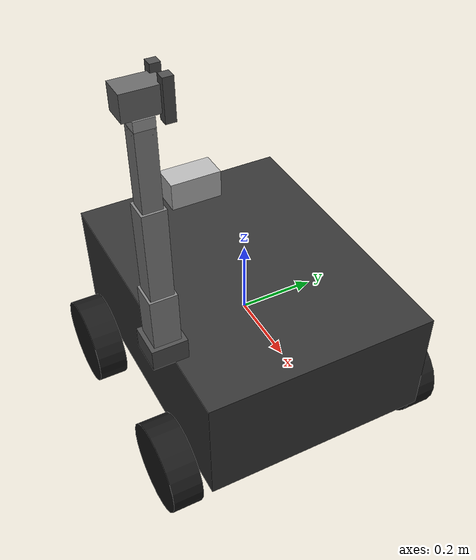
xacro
<?xml version="1.0"?>
<robot xmlns:xacro="http://www.ros.org/wiki/xacro" name="anveshak_rover">

  <!-- PARAMETERS AND CONSTANTS -->

  <!-- Robot dimensions -->
  <xacro:property name="base_length" value="0.8"/>
  <xacro:property name="base_width" value="0.6"/>
  <xacro:property name="base_height" value="0.3"/>
  <xacro:property name="base_mass" value="15.0"/>

  <!-- Wheel properties -->
  <xacro:property name="wheel_radius" value="0.12"/>
  <xacro:property name="wheel_thickness" value="0.08"/>
  <xacro:property name="wheel_mass" value="1.5"/>

  <!-- Wheel positions -->
  <xacro:property name="wheel_x_offset" value="0.25"/>  <!-- Distance from center along X -->
  <xacro:property name="wheel_y_offset" value="0.35"/>  <!-- Distance from center along Y (width/2 - margin) -->
  <xacro:property name="wheel_z_offset" value="-0.18"/> <!-- Height offset -->

  <!-- Bar differential properties -->
  <xacro:property name="diff_bar_length" value="0.7"/>
  <xacro:property name="diff_bar_radius" value="0.02"/>
  <xacro:property name="diff_bar_mass" value="0.5"/>

  <!-- Arm properties -->
  <xacro:property name="arm_base_height" value="0.15"/>
  <xacro:property name="shoulder_offset_x" value="0.3"/>
  <xacro:property name="shoulder_offset_y" value="-0.35"/>

  <!-- Link inertia macro -->
  <xacro:macro name="inertia_box" params="mass length width height">
    <inertial>
      <mass value="${mass}"/>
      <inertia ixx="${mass * (width*width + height*height) / 12.0}"
               iyy="${mass * (length*length + height*height) / 12.0}"
               izz="${mass * (length*length + width*width) / 12.0}"
               ixy="0.0" ixz="0.0" iyz="0.0"/>
    </inertial>
  </xacro:macro>

  <xacro:macro name="inertia_cylinder" params="mass radius length">
    <inertial>
      <mass value="${mass}"/>
      <inertia ixx="${mass * (3*radius*radius + length*length) / 12.0}"
               iyy="${mass * (3*radius*radius + length*length) / 12.0}"
               izz="${mass * radius*radius / 2.0}"
               ixy="0.0" ixz="0.0" iyz="0.0"/>
    </inertial>
  </xacro:macro>

  <!-- BASE LINK (Main Chassis) -->

  <link name="base_link">
    <visual>
      <origin xyz="0 0 0" rpy="0 0 0"/>
      <geometry>
        <box size="${base_length} ${base_width} ${base_height}"/>
      </geometry>
      <material name="chassis_color">
        <color rgba="0.2 0.2 0.2 1.0"/>
      </material>
    </visual>

    <collision>
      <origin xyz="0 0 0" rpy="0 0 0"/>
      <geometry>
        <box size="${base_length} ${base_width} ${base_height}"/>
      </geometry>
    </collision>

    <xacro:inertia_box mass="${base_mass}" length="${base_length}" width="${base_width}" height="${base_height}"/>
  </link>

  <!-- WHEELS (4x with individual control) -->

  <!-- Front Left Wheel -->
  <joint name="front_left_wheel_joint" type="continuous">
    <parent link="base_link"/>
    <child link="front_left_wheel"/>
    <origin xyz="${wheel_x_offset} ${wheel_y_offset} ${wheel_z_offset}" rpy="0 0 0"/>
    <axis xyz="0 1 0"/>
    <limit effort="100" velocity="20"/>
    <dynamics damping="0.1" friction="0.1"/>
  </joint>

  <link name="front_left_wheel">
    <visual>
      <origin xyz="0 0 0" rpy="1.5708 0 0"/>
      <geometry>
        <cylinder radius="${wheel_radius}" length="${wheel_thickness}"/>
      </geometry>
      <material name="wheel_color">
        <color rgba="0.1 0.1 0.1 1.0"/>
      </material>
    </visual>

    <collision>
      <origin xyz="0 0 0" rpy="1.5708 0 0"/>
      <geometry>
        <cylinder radius="${wheel_radius}" length="${wheel_thickness}"/>
      </geometry>
    </collision>

    <xacro:inertia_cylinder mass="${wheel_mass}" radius="${wheel_radius}" length="${wheel_thickness}"/>
  </link>

  <!-- Front Right Wheel -->
  <joint name="front_right_wheel_joint" type="continuous">
    <parent link="base_link"/>
    <child link="front_right_wheel"/>
    <origin xyz="${wheel_x_offset} ${-wheel_y_offset} ${wheel_z_offset}" rpy="0 0 0"/>
    <axis xyz="0 1 0"/>
    <limit effort="100" velocity="20"/>
    <dynamics damping="0.1" friction="0.1"/>
  </joint>

  <link name="front_right_wheel">
    <visual>
      <origin xyz="0 0 0" rpy="1.5708 0 0"/>
      <geometry>
        <cylinder radius="${wheel_radius}" length="${wheel_thickness}"/>
      </geometry>
      <material name="wheel_color">
        <color rgba="0.1 0.1 0.1 1.0"/>
      </material>
    </visual>

    <collision>
      <origin xyz="0 0 0" rpy="1.5708 0 0"/>
      <geometry>
        <cylinder radius="${wheel_radius}" length="${wheel_thickness}"/>
      </geometry>
    </collision>

    <xacro:inertia_cylinder mass="${wheel_mass}" radius="${wheel_radius}" length="${wheel_thickness}"/>
  </link>

  <!-- Rear Left Wheel -->
  <joint name="rear_left_wheel_joint" type="continuous">
    <parent link="base_link"/>
    <child link="rear_left_wheel"/>
    <origin xyz="${-wheel_x_offset} ${wheel_y_offset} ${wheel_z_offset}" rpy="0 0 0"/>
    <axis xyz="0 1 0"/>
    <limit effort="100" velocity="20"/>
    <dynamics damping="0.1" friction="0.1"/>
  </joint>

  <link name="rear_left_wheel">
    <visual>
      <origin xyz="0 0 0" rpy="1.5708 0 0"/>
      <geometry>
        <cylinder radius="${wheel_radius}" length="${wheel_thickness}"/>
      </geometry>
      <material name="wheel_color">
        <color rgba="0.1 0.1 0.1 1.0"/>
      </material>
    </visual>

    <collision>
      <origin xyz="0 0 0" rpy="1.5708 0 0"/>
      <geometry>
        <cylinder radius="${wheel_radius}" length="${wheel_thickness}"/>
      </geometry>
    </collision>

    <xacro:inertia_cylinder mass="${wheel_mass}" radius="${wheel_radius}" length="${wheel_thickness}"/>
  </link>

  <!-- Rear Right Wheel -->
  <joint name="rear_right_wheel_joint" type="continuous">
    <parent link="base_link"/>
    <child link="rear_right_wheel"/>
    <origin xyz="${-wheel_x_offset} ${-wheel_y_offset} ${wheel_z_offset}" rpy="0 0 0"/>
    <axis xyz="0 1 0"/>
    <limit effort="100" velocity="20"/>
    <dynamics damping="0.1" friction="0.1"/>
  </joint>

  <link name="rear_right_wheel">
    <visual>
      <origin xyz="0 0 0" rpy="1.5708 0 0"/>
      <geometry>
        <cylinder radius="${wheel_radius}" length="${wheel_thickness}"/>
      </geometry>
      <material name="wheel_color">
        <color rgba="0.1 0.1 0.1 1.0"/>
      </material>
    </visual>

    <collision>
      <origin xyz="0 0 0" rpy="1.5708 0 0"/>
      <geometry>
        <cylinder radius="${wheel_radius}" length="${wheel_thickness}"/>
      </geometry>
    </collision>

    <xacro:inertia_cylinder mass="${wheel_mass}" radius="${wheel_radius}" length="${wheel_thickness}"/>
  </link>

  <!-- BAR DIFFERENTIAL (Connects front and rear axles for suspension) -->

  <joint name="diff_bar_joint" type="revolute">
    <parent link="base_link"/>
    <child link="diff_bar"/>
    <origin xyz="0 0 0" rpy="0 1.5708 0"/>
    <axis xyz="1 0 0"/>
    <limit lower="-0.3" upper="0.3" effort="50" velocity="5"/>
    <dynamics damping="0.2" friction="0.05"/>
  </joint>

  <link name="diff_bar">
    <visual>
      <origin xyz="0 0 0" rpy="0 0 0"/>
      <geometry>
        <cylinder radius="${diff_bar_radius}" length="${diff_bar_length}"/>
      </geometry>
      <material name="diff_color">
        <color rgba="0.4 0.4 0.4 1.0"/>
      </material>
    </visual>

    <collision>
      <origin xyz="0 0 0" rpy="0 0 0"/>
      <geometry>
        <cylinder radius="${diff_bar_radius}" length="${diff_bar_length}"/>
      </geometry>
    </collision>

    <xacro:inertia_cylinder mass="${diff_bar_mass}" radius="${diff_bar_radius}" length="${diff_bar_length}"/>
  </link>

  <!-- MANIPULATOR ARM (5-DOF with gripper) -->

  <!-- Arm Base (Fixed platform on rover) -->
  <joint name="arm_base_joint" type="fixed">
    <parent link="base_link"/>
    <child link="arm_base_link"/>
    <origin xyz="${shoulder_offset_x} ${shoulder_offset_y} ${base_height/2 + arm_base_height}" rpy="0 0 0"/>
  </joint>

  <link name="arm_base_link">
    <visual>
      <origin xyz="0 0 0" rpy="0 0 0"/>
      <geometry>
        <box size="0.08 0.08 0.05"/>
      </geometry>
      <material name="arm_base_color">
        <color rgba="0.3 0.3 0.3 1.0"/>
      </material>
    </visual>

    <collision>
      <origin xyz="0 0 0" rpy="0 0 0"/>
      <geometry>
        <box size="0.08 0.08 0.05"/>
      </geometry>
    </collision>

    <inertial>
      <mass value="0.5"/>
      <inertia ixx="0.001" iyy="0.001" izz="0.001" ixy="0.0" ixz="0.0" iyz="0.0"/>
    </inertial>
  </link>

  <!-- Joint 1: Base Rotation (Yaw around Z) -->
  <joint name="arm_base_rotation_joint" type="revolute">
    <parent link="arm_base_link"/>
    <child link="shoulder_link"/>
    <origin xyz="0 0 0.025" rpy="0 0 0"/>
    <axis xyz="0 0 1"/>
    <limit lower="-3.14159" upper="3.14159" effort="50" velocity="3"/>
    <dynamics damping="0.1" friction="0.05"/>
  </joint>

  <link name="shoulder_link">
    <visual>
      <origin xyz="0 0 0.06" rpy="0 0 0"/>
      <geometry>
        <box size="0.06 0.06 0.12"/>
      </geometry>
      <material name="arm_color">
        <color rgba="0.5 0.5 0.5 1.0"/>
      </material>
    </visual>

    <collision>
      <origin xyz="0 0 0.06" rpy="0 0 0"/>
      <geometry>
        <box size="0.06 0.06 0.12"/>
      </geometry>
    </collision>

    <inertial>
      <mass value="1.0"/>
      <inertia ixx="0.01" iyy="0.01" izz="0.005" ixy="0.0" ixz="0.0" iyz="0.0"/>
    </inertial>
  </link>

  <!-- Joint 2: Shoulder (Pitch - up/down) -->
  <joint name="shoulder_pitch_joint" type="revolute">
    <parent link="shoulder_link"/>
    <child link="upper_arm_link"/>
    <origin xyz="0 0 0.12" rpy="0 0 0"/>
    <axis xyz="0 1 0"/>
    <limit lower="-1.5708" upper="1.5708" effort="40" velocity="2"/>
    <dynamics damping="0.1" friction="0.05"/>
  </joint>

  <link name="upper_arm_link">
    <visual>
      <origin xyz="0 0 0.1" rpy="0 0 0"/>
      <geometry>
        <box size="0.05 0.05 0.20"/>
      </geometry>
      <material name="arm_color">
        <color rgba="0.5 0.5 0.5 1.0"/>
      </material>
    </visual>

    <collision>
      <origin xyz="0 0 0.1" rpy="0 0 0"/>
      <geometry>
        <box size="0.05 0.05 0.20"/>
      </geometry>
    </collision>

    <inertial>
      <mass value="0.8"/>
      <inertia ixx="0.003" iyy="0.003" izz="0.001" ixy="0.0" ixz="0.0" iyz="0.0"/>
    </inertial>
  </link>

  <!-- Joint 3: Elbow (Pitch) -->
  <joint name="elbow_pitch_joint" type="revolute">
    <parent link="upper_arm_link"/>
    <child link="forearm_link"/>
    <origin xyz="0 0 0.20" rpy="0 0 0"/>
    <axis xyz="0 1 0"/>
    <limit lower="-1.5708" upper="1.5708" effort="35" velocity="2.5"/>
    <dynamics damping="0.1" friction="0.05"/>
  </joint>

  <link name="forearm_link">
    <visual>
      <origin xyz="0 0 0.08" rpy="0 0 0"/>
      <geometry>
        <box size="0.04 0.04 0.16"/>
      </geometry>
      <material name="arm_color">
        <color rgba="0.5 0.5 0.5 1.0"/>
      </material>
    </visual>

    <collision>
      <origin xyz="0 0 0.08" rpy="0 0 0"/>
      <geometry>
        <box size="0.04 0.04 0.16"/>
      </geometry>
    </collision>

    <inertial>
      <mass value="0.6"/>
      <inertia ixx="0.002" iyy="0.002" izz="0.0005" ixy="0.0" ixz="0.0" iyz="0.0"/>
    </inertial>
  </link>

  <!-- Joint 4: Wrist (Roll) -->
  <joint name="wrist_roll_joint" type="revolute">
    <parent link="forearm_link"/>
    <child link="wrist_link"/>
    <origin xyz="0 0 0.16" rpy="0 0 0"/>
    <axis xyz="1 0 0"/>
    <limit lower="-3.14159" upper="3.14159" effort="20" velocity="3"/>
    <dynamics damping="0.05" friction="0.02"/>
  </joint>

  <link name="wrist_link">
    <visual>
      <origin xyz="0 0 0" rpy="0 0 0"/>
      <geometry>
        <box size="0.04 0.04 0.04"/>
      </geometry>
      <material name="wrist_color">
        <color rgba="0.6 0.6 0.6 1.0"/>
      </material>
    </visual>

    <collision>
      <origin xyz="0 0 0" rpy="0 0 0"/>
      <geometry>
        <box size="0.04 0.04 0.04"/>
      </geometry>
    </collision>

    <inertial>
      <mass value="0.3"/>
      <inertia ixx="0.0003" iyy="0.0003" izz="0.0003" ixy="0.0" ixz="0.0" iyz="0.0"/>
    </inertial>
  </link>

  <!-- GRIPPER (Parallel jaw gripper with mimic joints) -->

  <!-- Gripper Base -->
  <joint name="gripper_base_joint" type="fixed">
    <parent link="wrist_link"/>
    <child link="gripper_base_link"/>
    <origin xyz="0 0 0.05" rpy="0 0 0"/>
  </joint>

  <link name="gripper_base_link">
    <visual>
      <origin xyz="0 0 0" rpy="0 0 0"/>
      <geometry>
        <box size="0.05 0.08 0.05"/>
      </geometry>
      <material name="gripper_color">
        <color rgba="0.4 0.4 0.4 1.0"/>
      </material>
    </visual>

    <collision>
      <origin xyz="0 0 0" rpy="0 0 0"/>
      <geometry>
        <box size="0.05 0.08 0.05"/>
      </geometry>
    </collision>

    <inertial>
      <mass value="0.2"/>
      <inertia ixx="0.0002" iyy="0.0002" izz="0.0002" ixy="0.0" ixz="0.0" iyz="0.0"/>
    </inertial>
  </link>

  <!-- Gripper Main Control Joint -->
  <joint name="gripper_controller_joint" type="prismatic">
    <parent link="gripper_base_link"/>
    <child link="gripper_right_finger"/>
    <origin xyz="0.025 0.04 0" rpy="0 0 0"/>
    <axis xyz="0 1 0"/>
    <limit lower="0" upper="0.03" effort="30" velocity="0.5"/>
    <dynamics damping="0.1" friction="0.05"/>
  </joint>

  <link name="gripper_right_finger">
    <visual>
      <origin xyz="0 0 0" rpy="0 0 0"/>
      <geometry>
        <box size="0.02 0.02 0.08"/>
      </geometry>
      <material name="gripper_finger">
        <color rgba="0.3 0.3 0.3 1.0"/>
      </material>
    </visual>

    <collision>
      <origin xyz="0 0 0" rpy="0 0 0"/>
      <geometry>
        <box size="0.02 0.02 0.08"/>
      </geometry>
    </collision>

    <inertial>
      <mass value="0.1"/>
      <inertia ixx="0.0001" iyy="0.0001" izz="0.00005" ixy="0.0" ixz="0.0" iyz="0.0"/>
    </inertial>
  </link>

  <!-- Left Finger (Mimic joint - mirrors right finger) -->
  <joint name="gripper_left_finger_joint" type="prismatic">
    <parent link="gripper_base_link"/>
    <child link="gripper_left_finger"/>
    <origin xyz="-0.025 0.04 0" rpy="0 0 0"/>
    <axis xyz="0 1 0"/>
    <limit lower="0" upper="0.03" effort="30" velocity="0.5"/>
    <dynamics damping="0.1" friction="0.05"/>
    <mimic joint="gripper_controller_joint" multiplier="-1.0" offset="0.03"/>
  </joint>

  <link name="gripper_left_finger">
    <visual>
      <origin xyz="0 0 0" rpy="0 0 0"/>
      <geometry>
        <box size="0.02 0.02 0.08"/>
      </geometry>
      <material name="gripper_finger">
        <color rgba="0.3 0.3 0.3 1.0"/>
      </material>
    </visual>

    <collision>
      <origin xyz="0 0 0" rpy="0 0 0"/>
      <geometry>
        <box size="0.02 0.02 0.08"/>
      </geometry>
    </collision>

    <inertial>
      <mass value="0.1"/>
      <inertia ixx="0.0001" iyy="0.0001" izz="0.00005" ixy="0.0" ixz="0.0" iyz="0.0"/>
    </inertial>
  </link>

  <!-- STEREO CAMERA (At rear of rover) -->

  <!-- Camera Mount -->
  <joint name="camera_mount_joint" type="fixed">
    <parent link="base_link"/>
    <child link="camera_mount_link"/>
    <origin xyz="${-base_length/2 + 0.08} 0 ${base_height/2 + 0.05}" rpy="0 0 0"/>
  </joint>

  <link name="camera_mount_link">
    <visual>
      <origin xyz="0 0 0" rpy="0 0 0"/>
      <geometry>
        <box size="0.08 0.15 0.08"/>
      </geometry>
      <material name="camera_mount_color">
        <color rgba="0.7 0.7 0.7 1.0"/>
      </material>
    </visual>

    <collision>
      <origin xyz="0 0 0" rpy="0 0 0"/>
      <geometry>
        <box size="0.08 0.15 0.08"/>
      </geometry>
    </collision>

    <inertial>
      <mass value="0.3"/>
      <inertia ixx="0.0003" iyy="0.0003" izz="0.0003" ixy="0.0" ixz="0.0" iyz="0.0"/>
    </inertial>
  </link>

  <!-- Left Camera -->
  <joint name="left_camera_joint" type="fixed">
    <parent link="camera_mount_link"/>
    <child link="left_camera_link"/>
    <origin xyz="0 -0.06 0" rpy="0 0 0"/>
  </joint>

  <link name="left_camera_link">
    <visual>
      <origin xyz="0 0 0" rpy="0 0 0"/>
      <geometry>
        <box size="0.04 0.025 0.035"/>
      </geometry>
      <material name="camera_color">
        <color rgba="0.2 0.2 0.2 1.0"/>
      </material>
    </visual>

    <collision>
      <origin xyz="0 0 0" rpy="0 0 0"/>
      <geometry>
        <box size="0.04 0.025 0.035"/>
      </geometry>
    </collision>

    <inertial>
      <mass value="0.15"/>
      <inertia ixx="0.00005" iyy="0.00005" izz="0.00005" ixy="0.0" ixz="0.0" iyz="0.0"/>
    </inertial>
  </link>

  <!-- Left Camera Optical Frame -->
  <joint name="left_camera_optical_joint" type="fixed">
    <parent link="left_camera_link"/>
    <child link="left_camera_optical_frame"/>
    <origin xyz="0 0 0" rpy="-1.5708 0 -1.5708"/>
  </joint>

  <link name="left_camera_optical_frame"/>

  <!-- Right Camera -->
  <joint name="right_camera_joint" type="fixed">
    <parent link="camera_mount_link"/>
    <child link="right_camera_link"/>
    <origin xyz="0 0.06 0" rpy="0 0 0"/>
  </joint>

  <link name="right_camera_link">
    <visual>
      <origin xyz="0 0 0" rpy="0 0 0"/>
      <geometry>
        <box size="0.04 0.025 0.035"/>
      </geometry>
      <material name="camera_color">
        <color rgba="0.2 0.2 0.2 1.0"/>
      </material>
    </visual>

    <collision>
      <origin xyz="0 0 0" rpy="0 0 0"/>
      <geometry>
        <box size="0.04 0.025 0.035"/>
      </geometry>
    </collision>

    <inertial>
      <mass value="0.15"/>
      <inertia ixx="0.00005" iyy="0.00005" izz="0.00005" ixy="0.0" ixz="0.0" iyz="0.0"/>
    </inertial>
  </link>

  <!-- Right Camera Optical Frame -->
  <joint name="right_camera_optical_joint" type="fixed">
    <parent link="right_camera_link"/>
    <child link="right_camera_optical_frame"/>
    <origin xyz="0 0 0" rpy="-1.5708 0 -1.5708"/>
  </joint>

  <link name="right_camera_optical_frame"/>

  <!-- GAZEBO PLUGINS (For simulation) -->

  <!-- Differential Drive Plugin for Gazebo -->
  <gazebo>
    <plugin name="gazebo_ros_diff_drive" filename="libgazebo_ros_diff_drive.so">
      <ros>
        <namespace>/</namespace>
      </ros>
      <!-- wheels -->
      <left_joint>front_left_wheel_joint</left_joint>
      <left_joint>rear_left_wheel_joint</left_joint>
      <right_joint>front_right_wheel_joint</right_joint>
      <right_joint>rear_right_wheel_joint</right_joint>
      <!-- kinematics -->
      <wheel_separation>0.7</wheel_separation>
      <wheel_diameter>0.24</wheel_diameter>
      <!-- limits -->
      <max_wheel_torque>100</max_wheel_torque>
      <max_wheel_acceleration>2.0</max_wheel_acceleration>
      <!-- output -->
      <publish_odom>true</publish_odom>
      <publish_odom_tf>false</publish_odom_tf>
      <publish_wheel_tf>false</publish_wheel_tf>
      <odometry_frame>odom</odometry_frame>
      <robot_base_frame>base_link</robot_base_frame>
    </plugin>
  </gazebo>

  <!-- Left Camera Gazebo Plugin -->
  <gazebo reference="left_camera_link">
    <sensor type="camera" name="left_camera">
      <update_rate>30.0</update_rate>
      <camera name="left_camera">
        <horizontal_fov>1.047</horizontal_fov>
        <image>
          <width>640</width>
          <height>480</height>
          <format>R8G8B8</format>
        </image>
        <clip>
          <near>0.02</near>
          <far>300</far>
        </clip>
        <noise>
          <type>gaussian</type>
          <mean>0.0</mean>
          <stddev>0.007</stddev>
        </noise>
      </camera>
      <plugin name="camera_controller" filename="libgazebo_ros_camera.so">
        <ros>
          <namespace>/stereo</namespace>
          <remapping>image_raw:=left/image_raw</remapping>
          <remapping>camera_info:=left/camera_info</remapping>
        </ros>
        <camera_name>left_camera</camera_name>
        <frame_name>left_camera_optical_frame</frame_name>
      </plugin>
    </sensor>
  </gazebo>

  <!-- Right Camera Gazebo Plugin -->
  <gazebo reference="right_camera_link">
    <sensor type="camera" name="right_camera">
      <update_rate>30.0</update_rate>
      <camera name="right_camera">
        <horizontal_fov>1.047</horizontal_fov>
        <image>
          <width>640</width>
          <height>480</height>
          <format>R8G8B8</format>
        </image>
        <clip>
          <near>0.02</near>
          <far>300</far>
        </clip>
        <noise>
          <type>gaussian</type>
          <mean>0.0</mean>
          <stddev>0.007</stddev>
        </noise>
      </camera>
      <plugin name="camera_controller" filename="libgazebo_ros_camera.so">
        <ros>
          <namespace>/stereo</namespace>
          <remapping>image_raw:=right/image_raw</remapping>
          <remapping>camera_info:=right/camera_info</remapping>
        </ros>
        <camera_name>right_camera</camera_name>
        <frame_name>right_camera_optical_frame</frame_name>
      </plugin>
    </sensor>
  </gazebo>

  <!-- Gazebo Material Definitions -->
  <gazebo reference="base_link">
    <material>Gazebo/DarkGrey</material>
    <mu1>0.5</mu1>
    <mu2>0.5</mu2>
  </gazebo>

  <gazebo reference="front_left_wheel">
    <material>Gazebo/Black</material>
    <mu1>1.0</mu1>
    <mu2>1.0</mu2>
  </gazebo>

  <gazebo reference="front_right_wheel">
    <material>Gazebo/Black</material>
    <mu1>1.0</mu1>
    <mu2>1.0</mu2>
  </gazebo>

  <gazebo reference="rear_left_wheel">
    <material>Gazebo/Black</material>
    <mu1>1.0</mu1>
    <mu2>1.0</mu2>
  </gazebo>

  <gazebo reference="rear_right_wheel">
    <material>Gazebo/Black</material>
    <mu1>1.0</mu1>
    <mu2>1.0</mu2>
  </gazebo>

</robot>
